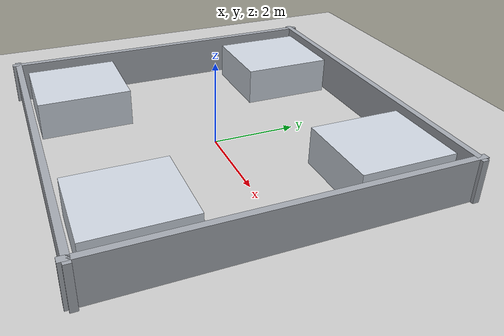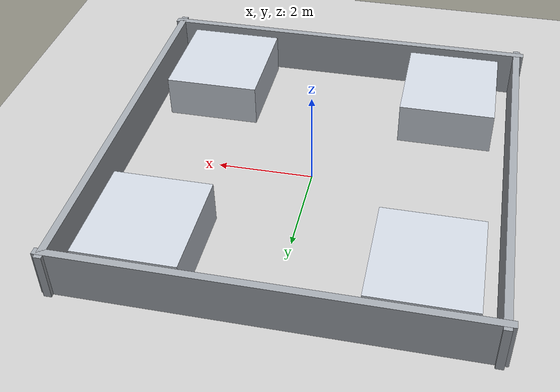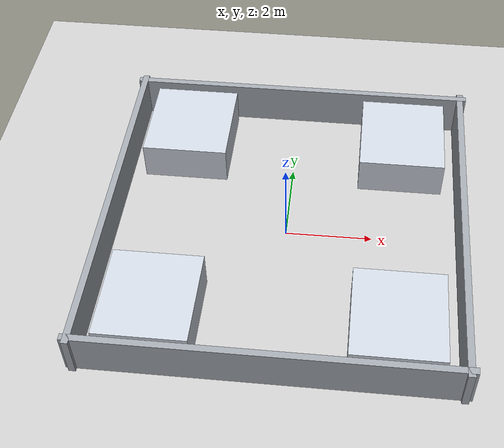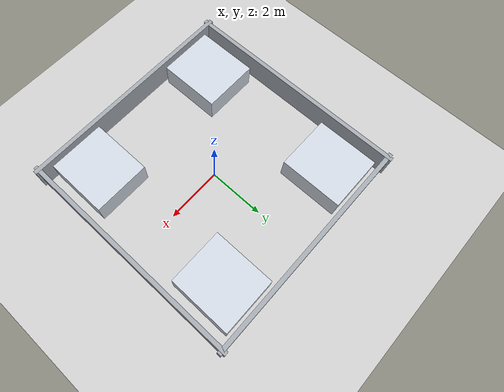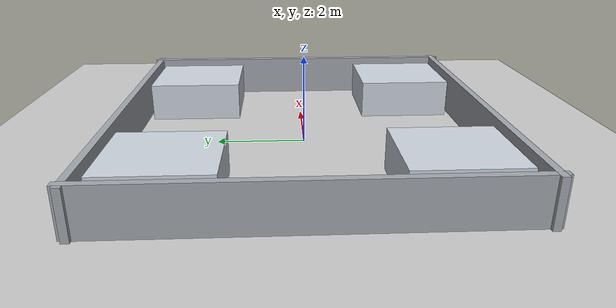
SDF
<sdf version="1.6">
 <world name="social_teacher_cross_dual_lane">
  <scene>
   <ambient>0.46 0.46 0.48 1</ambient>
   <background>0.93 0.96 1.0 1</background>
   <shadows>false</shadows>
  </scene>
  <include><uri>model://sun</uri></include>
  <include><uri>model://ground_plane</uri></include>
  <physics type="ode">
   <real_time_update_rate>0</real_time_update_rate>
   <max_step_size>0.001</max_step_size>
   <real_time_factor>1</real_time_factor>
   <ode>
    <solver>
     <type>quick</type>
     <iters>50</iters>
     <precon_iters>0</precon_iters>
     <sor>1.4</sor>
     <use_dynamic_moi_rescaling>1</use_dynamic_moi_rescaling>
    </solver>
    <constraints>
     <cfm>0.00001</cfm>
     <erp>0.2</erp>
     <contact_max_correcting_vel>2000.0</contact_max_correcting_vel>
     <contact_surface_layer>0.01</contact_surface_layer>
    </constraints>
   </ode>
  </physics>
  <model name="north_wall">
   <static>true</static>
   <pose>0 4.0 0.5 0 0 0</pose>
   <link name="link">
    <collision name="collision"><geometry><box><size>8.3 0.15 1.0</size></box></geometry></collision>
    <visual name="visual">
     <geometry><box><size>8.3 0.15 1.0</size></box></geometry>
     <material><ambient>0.56 0.57 0.60 1</ambient><diffuse>0.64 0.66 0.69 1</diffuse></material>
    </visual>
   </link>
  </model>
  <model name="south_wall">
   <static>true</static>
   <pose>0 -4.0 0.5 0 0 0</pose>
   <link name="link">
    <collision name="collision"><geometry><box><size>8.3 0.15 1.0</size></box></geometry></collision>
    <visual name="visual">
     <geometry><box><size>8.3 0.15 1.0</size></box></geometry>
     <material><ambient>0.56 0.57 0.60 1</ambient><diffuse>0.64 0.66 0.69 1</diffuse></material>
    </visual>
   </link>
  </model>
  <model name="west_wall">
   <static>true</static>
   <pose>-4.0 0 0.5 0 0 0</pose>
   <link name="link">
    <collision name="collision"><geometry><box><size>0.15 8.3 1.0</size></box></geometry></collision>
    <visual name="visual">
     <geometry><box><size>0.15 8.3 1.0</size></box></geometry>
     <material><ambient>0.56 0.57 0.60 1</ambient><diffuse>0.64 0.66 0.69 1</diffuse></material>
    </visual>
   </link>
  </model>
  <model name="east_wall">
   <static>true</static>
   <pose>4.0 0 0.5 0 0 0</pose>
   <link name="link">
    <collision name="collision"><geometry><box><size>0.15 8.3 1.0</size></box></geometry></collision>
    <visual name="visual">
     <geometry><box><size>0.15 8.3 1.0</size></box></geometry>
     <material><ambient>0.56 0.57 0.60 1</ambient><diffuse>0.64 0.66 0.69 1</diffuse></material>
    </visual>
   </link>
  </model>
  <model name="northwest_block">
   <static>true</static>
   <pose>-2.60 2.70 0.45 0 0 0</pose>
   <link name="link">
    <collision name="collision"><geometry><box><size>2.00 2.20 0.90</size></box></geometry></collision>
    <visual name="visual">
     <geometry><box><size>2.00 2.20 0.90</size></box></geometry>
     <material><ambient>0.77 0.80 0.85 1</ambient><diffuse>0.81 0.84 0.88 1</diffuse></material>
    </visual>
   </link>
  </model>
  <model name="southwest_block">
   <static>true</static>
   <pose>-2.60 -2.70 0.45 0 0 0</pose>
   <link name="link">
    <collision name="collision"><geometry><box><size>2.00 2.20 0.90</size></box></geometry></collision>
    <visual name="visual">
     <geometry><box><size>2.00 2.20 0.90</size></box></geometry>
     <material><ambient>0.77 0.80 0.85 1</ambient><diffuse>0.81 0.84 0.88 1</diffuse></material>
    </visual>
   </link>
  </model>
  <model name="northeast_block">
   <static>true</static>
   <pose>2.60 2.70 0.45 0 0 0</pose>
   <link name="link">
    <collision name="collision"><geometry><box><size>2.00 2.20 0.90</size></box></geometry></collision>
    <visual name="visual">
     <geometry><box><size>2.00 2.20 0.90</size></box></geometry>
     <material><ambient>0.77 0.80 0.85 1</ambient><diffuse>0.81 0.84 0.88 1</diffuse></material>
    </visual>
   </link>
  </model>
  <model name="southeast_block">
   <static>true</static>
   <pose>2.60 -2.70 0.45 0 0 0</pose>
   <link name="link">
    <collision name="collision"><geometry><box><size>2.00 2.20 0.90</size></box></geometry></collision>
    <visual name="visual">
     <geometry><box><size>2.00 2.20 0.90</size></box></geometry>
     <material><ambient>0.77 0.80 0.85 1</ambient><diffuse>0.81 0.84 0.88 1</diffuse></material>
    </visual>
   </link>
  </model>
 </world>
</sdf>
